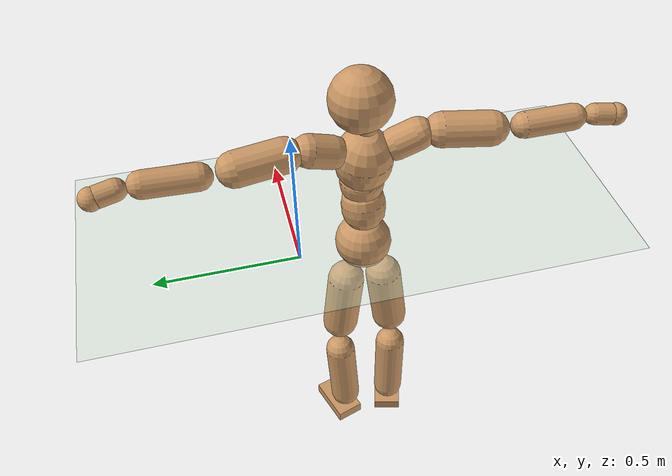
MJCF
<mujoco model="humanoid">
  <compiler coordinate="local"/>
  <default>
    <joint damping="0.0" armature="0.01" stiffness="0.0" limited="true"/>
    <geom conaffinity="1" condim="3" contype="7" margin="0.001" rgba="0.8 0.6 .4 1"/>
  </default>
  <asset>
    <texture type="skybox" builtin="gradient" rgb1=".4 .5 .6" rgb2="0 0 0" width="100" height="100"/>
    <texture builtin="flat" height="1278" mark="cross" markrgb="1 1 1" name="texgeom" random="0.01" rgb1="0.8 0.6 0.4" rgb2="0.8 0.6 0.4" type="cube" width="127"/>
    <texture builtin="checker" height="100" name="texplane" rgb1="0 0 0" rgb2="0.8 0.8 0.8" type="2d" width="100"/>
    <material name="MatPlane" reflectance="0.5" shininess="1" specular="1" texrepeat="60 60" texture="texplane"/>
    <material name="geom" texture="texgeom" texuniform="true"/>
  </asset>
  <worldbody>
    <light cutoff="100" diffuse="1 1 1" dir="-0 0 -1.3" directional="true" exponent="1" pos="0 0 1.3" specular=".1 .1 .1"/>
    <geom conaffinity="1" condim="3" name="floor" pos="0 0 0" rgba="0.8 0.9 0.8 1" size="100 100 .2" type="plane" material="MatPlane"/>
    <body name="Pelvis" pos="-0.0034 -0.2216 0.0334">
      <freejoint name="Pelvis"/>
      <geom type="sphere" contype="1" conaffinity="1" density="500" size="0.0968" pos="0.0000 0.0000 0.0000" name="Pelvis"/>
      <body name="L_Hip" pos="-0.0168 0.0589 -0.0803">
        <joint name="L_Hip_x" type="hinge" pos="0 0 0" axis="1 0 0" stiffness="800" damping="80" armature="0.02" range="-180.0000 180.0000"/>
        <joint name="L_Hip_y" type="hinge" pos="0 0 0" axis="0 1 0" stiffness="800" damping="80" armature="0.02" range="-180.0000 180.0000"/>
        <joint name="L_Hip_z" type="hinge" pos="0 0 0" axis="0 0 1" stiffness="800" damping="80" armature="0.02" range="-180.0000 180.0000"/>
        <geom type="capsule" contype="1" conaffinity="1" density="500" fromto="0.0017 0.0088 -0.0773 0.0067 0.0351 -0.3090" size="0.0642" name="L_Hip"/>
        <body name="L_Knee" pos="0.0083 0.0439 -0.3863">
          <joint name="L_Knee_x" type="hinge" pos="0 0 0" axis="1 0 0" stiffness="800" damping="80" armature="0.02" range="-180.0000 180.0000"/>
          <joint name="L_Knee_y" type="hinge" pos="0 0 0" axis="0 1 0" stiffness="800" damping="80" armature="0.02" range="-180.0000 180.0000"/>
          <joint name="L_Knee_z" type="hinge" pos="0 0 0" axis="0 0 1" stiffness="800" damping="80" armature="0.02" range="-180.0000 180.0000"/>
          <geom type="capsule" contype="1" conaffinity="1" density="500" fromto="-0.0074 -0.0030 -0.0860 -0.0298 -0.0120 -0.3441" size="0.0555" name="L_Knee"/>
          <body name="L_Ankle" pos="-0.0372 -0.015 -0.4302">
            <joint name="L_Ankle_x" type="hinge" pos="0 0 0" axis="1 0 0" stiffness="800" damping="80" armature="0.02" range="-180.0000 180.0000"/>
            <joint name="L_Ankle_y" type="hinge" pos="0 0 0" axis="0 1 0" stiffness="800" damping="80" armature="0.02" range="-180.0000 180.0000"/>
            <joint name="L_Ankle_z" type="hinge" pos="0 0 0" axis="0 0 1" stiffness="800" damping="80" armature="0.02" range="-180.0000 180.0000"/>
            <geom type="box" contype="1" conaffinity="1" density="500" pos="0.0601 0.0194 -0.0297" size="0.0895 0.0508 0.0214" quat="0.9879 0.0000 0.0000 0.1554" name="L_Ankle"/>
            <body name="L_Toe" pos="0.1203 0.0388 -0.0594">
              <joint name="L_Toe_x" type="hinge" pos="0 0 0" axis="1 0 0" stiffness="500" damping="50" armature="0.02" range="-180.0000 180.0000"/>
              <joint name="L_Toe_y" type="hinge" pos="0 0 0" axis="0 1 0" stiffness="500" damping="50" armature="0.02" range="-180.0000 180.0000"/>
              <joint name="L_Toe_z" type="hinge" pos="0 0 0" axis="0 0 1" stiffness="500" damping="50" armature="0.02" range="-180.0000 180.0000"/>
              <geom type="box" contype="1" conaffinity="1" density="500" pos="0.0000 0.0000 0.0277" size="0.0011 0.0025 0.001" quat="0.9871 0.0000 0.0000 0.1603" name="L_Toe"/>
            </body>
          </body>
        </body>
      </body>
      <body name="R_Hip" pos="-0.0118 -0.0607 -0.0887">
        <joint name="R_Hip_x" type="hinge" pos="0 0 0" axis="1 0 0" stiffness="800" damping="80" armature="0.02" range="-180.0000 180.0000"/>
        <joint name="R_Hip_y" type="hinge" pos="0 0 0" axis="0 1 0" stiffness="800" damping="80" armature="0.02" range="-180.0000 180.0000"/>
        <joint name="R_Hip_z" type="hinge" pos="0 0 0" axis="0 0 1" stiffness="800" damping="80" armature="0.02" range="-180.0000 180.0000"/>
        <geom type="capsule" contype="1" conaffinity="1" density="500" fromto="-0.0012 -0.0085 -0.0766 -0.0048 -0.0339 -0.3065" size="0.0635" name="R_Hip"/>
        <body name="R_Knee" pos="-0.006 -0.0424 -0.3831">
          <joint name="R_Knee_x" type="hinge" pos="0 0 0" axis="1 0 0" stiffness="800" damping="80" armature="0.02" range="-180.0000 180.0000"/>
          <joint name="R_Knee_y" type="hinge" pos="0 0 0" axis="0 1 0" stiffness="800" damping="80" armature="0.02" range="-180.0000 180.0000"/>
          <joint name="R_Knee_z" type="hinge" pos="0 0 0" axis="0 0 1" stiffness="800" damping="80" armature="0.02" range="-180.0000 180.0000"/>
          <geom type="capsule" contype="1" conaffinity="1" density="500" fromto="-0.0070 0.0038 -0.0844 -0.0280 0.0153 -0.3376" size="0.0555" name="R_Knee"/>
          <body name="R_Ankle" pos="-0.035 0.0191 -0.422">
            <joint name="R_Ankle_x" type="hinge" pos="0 0 0" axis="1 0 0" stiffness="800" damping="80" armature="0.02" range="-180.0000 180.0000"/>
            <joint name="R_Ankle_y" type="hinge" pos="0 0 0" axis="0 1 0" stiffness="800" damping="80" armature="0.02" range="-180.0000 180.0000"/>
            <joint name="R_Ankle_z" type="hinge" pos="0 0 0" axis="0 0 1" stiffness="800" damping="80" armature="0.02" range="-180.0000 180.0000"/>
            <geom type="box" contype="1" conaffinity="1" density="500" pos="0.0643 -0.0179 -0.0299" size="0.0899 0.051 0.0213" quat="0.9908 0.0000 0.0000 -0.1356" name="R_Ankle"/>
            <body name="R_Toe" pos="0.1286 -0.0359 -0.0597">
              <joint name="R_Toe_x" type="hinge" pos="0 0 0" axis="1 0 0" stiffness="500" damping="50" armature="0.02" range="-180.0000 180.0000"/>
              <joint name="R_Toe_y" type="hinge" pos="0 0 0" axis="0 1 0" stiffness="500" damping="50" armature="0.02" range="-180.0000 180.0000"/>
              <joint name="R_Toe_z" type="hinge" pos="0 0 0" axis="0 0 1" stiffness="500" damping="50" armature="0.02" range="-180.0000 180.0000"/>
              <geom type="box" contype="1" conaffinity="1" density="500" pos="0.0000 0.0000 0.0289" size="0.0011 0.0025 0.001" quat="0.9920 0.0000 0.0000 -0.1265" name="R_Toe"/>
            </body>
          </body>
        </body>
      </body>
      <body name="Torso" pos="-0.0419 0.0046 0.1218">
        <joint name="Torso_x" type="hinge" pos="0 0 0" axis="1 0 0" stiffness="1000" damping="100" armature="0.02" range="-180.0000 180.0000"/>
        <joint name="Torso_y" type="hinge" pos="0 0 0" axis="0 1 0" stiffness="1000" damping="100" armature="0.02" range="-180.0000 180.0000"/>
        <joint name="Torso_z" type="hinge" pos="0 0 0" axis="0 0 1" stiffness="1000" damping="100" armature="0.02" range="-180.0000 180.0000"/>
        <geom type="capsule" contype="1" conaffinity="1" density="500" fromto="0.0140 0.0022 0.0779 0.0093 0.0015 0.0520" size="0.072912" name="Torso"/>
        <body name="Spine" pos="0.0233 0.0037 0.1299">
          <joint name="Spine_x" type="hinge" pos="0 0 0" axis="1 0 0" stiffness="1000" damping="100" armature="0.02" range="-180.0000 180.0000"/>
          <joint name="Spine_y" type="hinge" pos="0 0 0" axis="0 1 0" stiffness="1000" damping="100" armature="0.02" range="-180.0000 180.0000"/>
          <joint name="Spine_z" type="hinge" pos="0 0 0" axis="0 0 1" stiffness="1000" damping="100" armature="0.02" range="-180.0000 180.0000"/>
          <geom type="capsule" contype="1" conaffinity="1" density="500" fromto="0.0022 -0.0010 0.0313 0.0015 -0.0007 0.0209" size="0.071796" name="Spine"/>
          <body name="Chest" pos="0.0037 -0.0017 0.0522">
            <joint name="Chest_x" type="hinge" pos="0 0 0" axis="1 0 0" stiffness="1000" damping="100" armature="0.02" range="-180.0000 180.0000"/>
            <joint name="Chest_y" type="hinge" pos="0 0 0" axis="0 1 0" stiffness="1000" damping="100" armature="0.02" range="-180.0000 180.0000"/>
            <joint name="Chest_z" type="hinge" pos="0 0 0" axis="0 0 1" stiffness="1000" damping="100" armature="0.02" range="-180.0000 180.0000"/>
            <geom type="capsule" contype="1" conaffinity="1" density="500" fromto="-0.0136 -0.0043 0.0820 -0.0090 -0.0029 0.0547" size="0.092535" name="Chest"/>
            <body name="Neck" pos="-0.0326 -0.0126 0.1946">
              <joint name="Neck_x" type="hinge" pos="0 0 0" axis="1 0 0" stiffness="500" damping="50" armature="0.02" range="-180.0000 180.0000"/>
              <joint name="Neck_y" type="hinge" pos="0 0 0" axis="0 1 0" stiffness="500" damping="50" armature="0.02" range="-180.0000 180.0000"/>
              <joint name="Neck_z" type="hinge" pos="0 0 0" axis="0 0 1" stiffness="500" damping="50" armature="0.02" range="-180.0000 180.0000"/>
              <geom type="capsule" contype="1" conaffinity="1" density="500" fromto="0.0085 0.0021 0.0150 0.0341 0.0085 0.0598" size="0.040734" name="Neck"/>
              <body name="Head" pos="0.0426 0.0106 0.0748">
                <joint name="Head_x" type="hinge" pos="0 0 0" axis="1 0 0" stiffness="500" damping="50" armature="0.02" range="-180.0000 180.0000"/>
                <joint name="Head_y" type="hinge" pos="0 0 0" axis="0 1 0" stiffness="500" damping="50" armature="0.02" range="-180.0000 180.0000"/>
                <joint name="Head_z" type="hinge" pos="0 0 0" axis="0 0 1" stiffness="500" damping="50" armature="0.02" range="-180.0000 180.0000"/>
                <geom type="sphere" contype="1" conaffinity="1" density="500" size="0.1012" pos="0.0000 0.0000 0.0000" name="Head"/>
              </body>
            </body>
            <body name="L_Thorax" pos="-0.0146 0.0718 0.1091">
              <joint name="L_Thorax_x" type="hinge" pos="0 0 0" axis="1 0 0" stiffness="500" damping="50" armature="0.02" range="-180.0000 180.0000"/>
              <joint name="L_Thorax_y" type="hinge" pos="0 0 0" axis="0 1 0" stiffness="500" damping="50" armature="0.02" range="-180.0000 180.0000"/>
              <joint name="L_Thorax_z" type="hinge" pos="0 0 0" axis="0 0 1" stiffness="500" damping="50" armature="0.02" range="-180.0000 180.0000"/>
              <geom type="capsule" contype="1" conaffinity="1" density="500" fromto="-0.0037 0.0245 0.0092 -0.0149 0.0980 0.0366" size="0.0527" name="L_Thorax"/>
              <body name="L_Shoulder" pos="-0.0186 0.1225 0.0458">
                <joint name="L_Shoulder_x" type="hinge" pos="0 0 0" axis="1 0 0" stiffness="500" damping="50" armature="0.02" range="-720.0000 720.0000"/>
                <joint name="L_Shoulder_y" type="hinge" pos="0 0 0" axis="0 1 0" stiffness="500" damping="50" armature="0.02" range="-720.0000 720.0000"/>
                <joint name="L_Shoulder_z" type="hinge" pos="0 0 0" axis="0 0 1" stiffness="500" damping="50" armature="0.02" range="-720.0000 720.0000"/>
                <geom type="capsule" contype="1" conaffinity="1" density="500" fromto="-0.0052 0.0499 -0.0032 -0.0209 0.1995 -0.0126" size="0.056" name="L_Shoulder"/>
                <body name="L_Elbow" pos="-0.0262 0.2493 -0.0158">
                  <joint name="L_Elbow_x" type="hinge" pos="0 0 0" axis="1 0 0" stiffness="500" damping="50" armature="0.02" range="-720.0000 720.0000"/>
                  <joint name="L_Elbow_y" type="hinge" pos="0 0 0" axis="0 1 0" stiffness="500" damping="50" armature="0.02" range="-720.0000 720.0000"/>
                  <joint name="L_Elbow_z" type="hinge" pos="0 0 0" axis="0 0 1" stiffness="500" damping="50" armature="0.02" range="-720.0000 720.0000"/>
                  <geom type="capsule" contype="1" conaffinity="1" density="500" fromto="-0.0013 0.0537 0.0028 -0.0052 0.2150 0.0111" size="0.0425" name="L_Elbow"/>
                  <body name="L_Wrist" pos="-0.0066 0.2687 0.0139">
                    <joint name="L_Wrist_x" type="hinge" pos="0 0 0" axis="1 0 0" stiffness="300" damping="30" armature="0.02" range="-180.0000 180.0000"/>
                    <joint name="L_Wrist_y" type="hinge" pos="0 0 0" axis="0 1 0" stiffness="300" damping="30" armature="0.02" range="-180.0000 180.0000"/>
                    <joint name="L_Wrist_z" type="hinge" pos="0 0 0" axis="0 0 1" stiffness="300" damping="30" armature="0.02" range="-180.0000 180.0000"/>
                    <geom type="capsule" contype="1" conaffinity="1" density="500" fromto="-0.0032 0.0174 -0.0022 -0.0127 0.0698 -0.0086" size="0.0341" name="L_Wrist"/>
                    <body name="L_Hand" pos="-0.0159 0.0872 -0.0108">
                      <joint name="L_Hand_x" type="hinge" pos="0 0 0" axis="1 0 0" stiffness="300" damping="30" armature="0.02" range="-180.0000 180.0000"/>
                      <joint name="L_Hand_y" type="hinge" pos="0 0 0" axis="0 1 0" stiffness="300" damping="30" armature="0.02" range="-180.0000 180.0000"/>
                      <joint name="L_Hand_z" type="hinge" pos="0 0 0" axis="0 0 1" stiffness="300" damping="30" armature="0.02" range="-180.0000 180.0000"/>
                      <geom type="sphere" contype="1" conaffinity="1" density="500" size="0.0357" pos="0.0000 0.0000 0.0000" name="L_Hand"/>
                    </body>
                  </body>
                </body>
              </body>
            </body>
            <body name="R_Thorax" pos="-0.0206 -0.0807 0.1065">
              <joint name="R_Thorax_x" type="hinge" pos="0 0 0" axis="1 0 0" stiffness="500" damping="50" armature="0.02" range="-180.0000 180.0000"/>
              <joint name="R_Thorax_y" type="hinge" pos="0 0 0" axis="0 1 0" stiffness="500" damping="50" armature="0.02" range="-180.0000 180.0000"/>
              <joint name="R_Thorax_z" type="hinge" pos="0 0 0" axis="0 0 1" stiffness="500" damping="50" armature="0.02" range="-180.0000 180.0000"/>
              <geom type="capsule" contype="1" conaffinity="1" density="500" fromto="-0.0018 -0.0223 0.0095 -0.0071 -0.0893 0.0379" size="0.0524" name="R_Thorax"/>
              <body name="R_Shoulder" pos="-0.0088 -0.1116 0.0474">
                <joint name="R_Shoulder_x" type="hinge" pos="0 0 0" axis="1 0 0" stiffness="500" damping="50" armature="0.02" range="-720.0000 720.0000"/>
                <joint name="R_Shoulder_y" type="hinge" pos="0 0 0" axis="0 1 0" stiffness="500" damping="50" armature="0.02" range="-720.0000 720.0000"/>
                <joint name="R_Shoulder_z" type="hinge" pos="0 0 0" axis="0 0 1" stiffness="500" damping="50" armature="0.02" range="-720.0000 720.0000"/>
                <geom type="capsule" contype="1" conaffinity="1" density="500" fromto="-0.0069 -0.0511 -0.0029 -0.0275 -0.2044 -0.0115" size="0.0563" name="R_Shoulder"/>
                <body name="R_Elbow" pos="-0.0344 -0.2556 -0.0144">
                  <joint name="R_Elbow_x" type="hinge" pos="0 0 0" axis="1 0 0" stiffness="500" damping="50" armature="0.02" range="-720.0000 720.0000"/>
                  <joint name="R_Elbow_y" type="hinge" pos="0 0 0" axis="0 1 0" stiffness="500" damping="50" armature="0.02" range="-720.0000 720.0000"/>
                  <joint name="R_Elbow_z" type="hinge" pos="0 0 0" axis="0 0 1" stiffness="500" damping="50" armature="0.02" range="-720.0000 720.0000"/>
                  <geom type="capsule" contype="1" conaffinity="1" density="500" fromto="-0.0011 -0.0539 0.0012 -0.0044 -0.2155 0.0047" size="0.0426" name="R_Elbow"/>
                  <body name="R_Wrist" pos="-0.0055 -0.2694 0.0059">
                    <joint name="R_Wrist_x" type="hinge" pos="0 0 0" axis="1 0 0" stiffness="300" damping="30" armature="0.02" range="-180.0000 180.0000"/>
                    <joint name="R_Wrist_y" type="hinge" pos="0 0 0" axis="0 1 0" stiffness="300" damping="30" armature="0.02" range="-180.0000 180.0000"/>
                    <joint name="R_Wrist_z" type="hinge" pos="0 0 0" axis="0 0 1" stiffness="300" damping="30" armature="0.02" range="-180.0000 180.0000"/>
                    <geom type="capsule" contype="1" conaffinity="1" density="500" fromto="-0.0021 -0.0177 -0.0018 -0.0083 -0.0708 -0.0070" size="0.0344" name="R_Wrist"/>
                    <body name="R_Hand" pos="-0.0103 -0.0885 -0.0088">
                      <joint name="R_Hand_x" type="hinge" pos="0 0 0" axis="1 0 0" stiffness="300" damping="30" armature="0.02" range="-180.0000 180.0000"/>
                      <joint name="R_Hand_y" type="hinge" pos="0 0 0" axis="0 1 0" stiffness="300" damping="30" armature="0.02" range="-180.0000 180.0000"/>
                      <joint name="R_Hand_z" type="hinge" pos="0 0 0" axis="0 0 1" stiffness="300" damping="30" armature="0.02" range="-180.0000 180.0000"/>
                      <geom type="sphere" contype="1" conaffinity="1" density="500" size="0.0359" pos="0.0000 0.0000 0.0000" name="R_Hand"/>
                    </body>
                  </body>
                </body>
              </body>
            </body>
          </body>
        </body>
      </body>
    </body>
  </worldbody>
  <actuator>
    <motor name="L_Hip_x" joint="L_Hip_x" gear="500"/>
    <motor name="L_Hip_y" joint="L_Hip_y" gear="500"/>
    <motor name="L_Hip_z" joint="L_Hip_z" gear="500"/>
    <motor name="L_Knee_x" joint="L_Knee_x" gear="500"/>
    <motor name="L_Knee_y" joint="L_Knee_y" gear="500"/>
    <motor name="L_Knee_z" joint="L_Knee_z" gear="500"/>
    <motor name="L_Ankle_x" joint="L_Ankle_x" gear="500"/>
    <motor name="L_Ankle_y" joint="L_Ankle_y" gear="500"/>
    <motor name="L_Ankle_z" joint="L_Ankle_z" gear="500"/>
    <motor name="L_Toe_x" joint="L_Toe_x" gear="500"/>
    <motor name="L_Toe_y" joint="L_Toe_y" gear="500"/>
    <motor name="L_Toe_z" joint="L_Toe_z" gear="500"/>
    <motor name="R_Hip_x" joint="R_Hip_x" gear="500"/>
    <motor name="R_Hip_y" joint="R_Hip_y" gear="500"/>
    <motor name="R_Hip_z" joint="R_Hip_z" gear="500"/>
    <motor name="R_Knee_x" joint="R_Knee_x" gear="500"/>
    <motor name="R_Knee_y" joint="R_Knee_y" gear="500"/>
    <motor name="R_Knee_z" joint="R_Knee_z" gear="500"/>
    <motor name="R_Ankle_x" joint="R_Ankle_x" gear="500"/>
    <motor name="R_Ankle_y" joint="R_Ankle_y" gear="500"/>
    <motor name="R_Ankle_z" joint="R_Ankle_z" gear="500"/>
    <motor name="R_Toe_x" joint="R_Toe_x" gear="500"/>
    <motor name="R_Toe_y" joint="R_Toe_y" gear="500"/>
    <motor name="R_Toe_z" joint="R_Toe_z" gear="500"/>
    <motor name="Torso_x" joint="Torso_x" gear="500"/>
    <motor name="Torso_y" joint="Torso_y" gear="500"/>
    <motor name="Torso_z" joint="Torso_z" gear="500"/>
    <motor name="Spine_x" joint="Spine_x" gear="500"/>
    <motor name="Spine_y" joint="Spine_y" gear="500"/>
    <motor name="Spine_z" joint="Spine_z" gear="500"/>
    <motor name="Chest_x" joint="Chest_x" gear="500"/>
    <motor name="Chest_y" joint="Chest_y" gear="500"/>
    <motor name="Chest_z" joint="Chest_z" gear="500"/>
    <motor name="Neck_x" joint="Neck_x" gear="500"/>
    <motor name="Neck_y" joint="Neck_y" gear="500"/>
    <motor name="Neck_z" joint="Neck_z" gear="500"/>
    <motor name="Head_x" joint="Head_x" gear="500"/>
    <motor name="Head_y" joint="Head_y" gear="500"/>
    <motor name="Head_z" joint="Head_z" gear="500"/>
    <motor name="L_Thorax_x" joint="L_Thorax_x" gear="500"/>
    <motor name="L_Thorax_y" joint="L_Thorax_y" gear="500"/>
    <motor name="L_Thorax_z" joint="L_Thorax_z" gear="500"/>
    <motor name="L_Shoulder_x" joint="L_Shoulder_x" gear="500"/>
    <motor name="L_Shoulder_y" joint="L_Shoulder_y" gear="500"/>
    <motor name="L_Shoulder_z" joint="L_Shoulder_z" gear="500"/>
    <motor name="L_Elbow_x" joint="L_Elbow_x" gear="500"/>
    <motor name="L_Elbow_y" joint="L_Elbow_y" gear="500"/>
    <motor name="L_Elbow_z" joint="L_Elbow_z" gear="500"/>
    <motor name="L_Wrist_x" joint="L_Wrist_x" gear="500"/>
    <motor name="L_Wrist_y" joint="L_Wrist_y" gear="500"/>
    <motor name="L_Wrist_z" joint="L_Wrist_z" gear="500"/>
    <motor name="L_Hand_x" joint="L_Hand_x" gear="500"/>
    <motor name="L_Hand_y" joint="L_Hand_y" gear="500"/>
    <motor name="L_Hand_z" joint="L_Hand_z" gear="500"/>
    <motor name="R_Thorax_x" joint="R_Thorax_x" gear="500"/>
    <motor name="R_Thorax_y" joint="R_Thorax_y" gear="500"/>
    <motor name="R_Thorax_z" joint="R_Thorax_z" gear="500"/>
    <motor name="R_Shoulder_x" joint="R_Shoulder_x" gear="500"/>
    <motor name="R_Shoulder_y" joint="R_Shoulder_y" gear="500"/>
    <motor name="R_Shoulder_z" joint="R_Shoulder_z" gear="500"/>
    <motor name="R_Elbow_x" joint="R_Elbow_x" gear="500"/>
    <motor name="R_Elbow_y" joint="R_Elbow_y" gear="500"/>
    <motor name="R_Elbow_z" joint="R_Elbow_z" gear="500"/>
    <motor name="R_Wrist_x" joint="R_Wrist_x" gear="500"/>
    <motor name="R_Wrist_y" joint="R_Wrist_y" gear="500"/>
    <motor name="R_Wrist_z" joint="R_Wrist_z" gear="500"/>
    <motor name="R_Hand_x" joint="R_Hand_x" gear="500"/>
    <motor name="R_Hand_y" joint="R_Hand_y" gear="500"/>
    <motor name="R_Hand_z" joint="R_Hand_z" gear="500"/>
  </actuator>
  <contact>
    <exclude body1="Torso" body2="Chest"/>
    <exclude body1="Head" body2="Chest"/>
    <exclude body1="R_Knee" body2="R_Toe"/>
    <exclude body1="R_Knee" body2="L_Ankle"/>
    <exclude body1="R_Knee" body2="L_Toe"/>
    <exclude body1="L_Knee" body2="L_Toe"/>
    <exclude body1="L_Knee" body2="R_Ankle"/>
    <exclude body1="L_Knee" body2="R_Toe"/>
    <exclude body1="L_Shoulder" body2="Chest"/>
    <exclude body1="R_Shoulder" body2="Chest"/>
  </contact>
  <sensor/>
  <size njmax="700" nconmax="700"/>
</mujoco>
